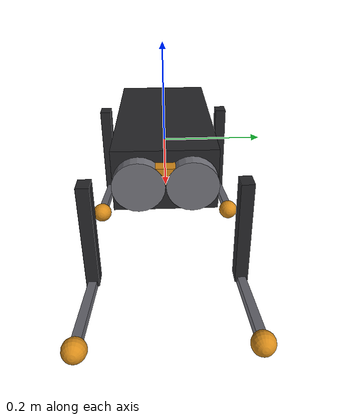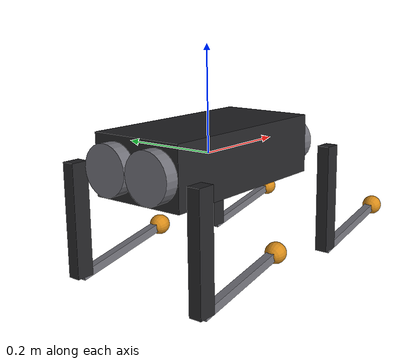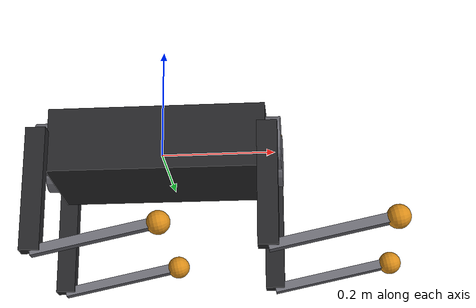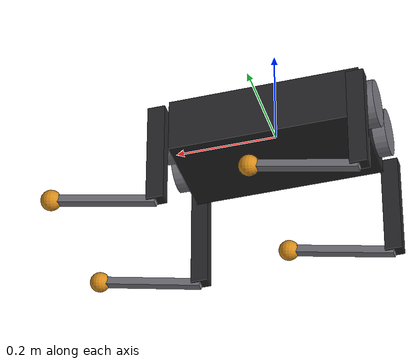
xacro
<?xml version="1.0"?>
<robot xmlns:xacro="http://www.ros.org/wiki/xacro" name="go2">

  <!-- ── dimensions (metres) ───────────────────────────────────────────── -->
  <xacro:property name="trunk_length" value="0.3762"/>
  <xacro:property name="trunk_width"  value="0.0935"/>
  <xacro:property name="trunk_height" value="0.114"/>
  <xacro:property name="trunk_mass"   value="6.921"/>

  <xacro:property name="hip_offset_x" value="0.1934"/>
  <xacro:property name="hip_offset_y" value="0.0465"/>
  <xacro:property name="thigh_offset" value="0.0955"/>
  <xacro:property name="thigh_length" value="0.213"/>
  <xacro:property name="calf_length"  value="0.213"/>

  <xacro:property name="hip_radius"   value="0.046"/>
  <xacro:property name="hip_length"   value="0.04"/>
  <xacro:property name="thigh_width"  value="0.0245"/>
  <xacro:property name="thigh_height" value="0.034"/>
  <xacro:property name="calf_width"   value="0.016"/>
  <xacro:property name="foot_radius"  value="0.02"/>

  <xacro:property name="hip_mass"   value="0.678"/>
  <xacro:property name="thigh_mass" value="1.152"/>
  <xacro:property name="calf_mass"  value="0.154"/>
  <xacro:property name="foot_mass"  value="0.06"/>

  <!-- ── joint limits (rad, rad/s, N·m) ────────────────────────────────── -->
  <xacro:property name="hip_min"   value="-1.0472"/>
  <xacro:property name="hip_max"   value="1.0472"/>
  <xacro:property name="hip_tau"   value="23.7"/>
  <xacro:property name="hip_vel"   value="30.1"/>
  <xacro:property name="thigh_min" value="-1.5708"/>
  <xacro:property name="thigh_max" value="3.4907"/>
  <xacro:property name="thigh_tau" value="23.7"/>
  <xacro:property name="thigh_vel" value="30.1"/>
  <xacro:property name="calf_min"  value="-2.7227"/>
  <xacro:property name="calf_max"  value="-0.83776"/>
  <xacro:property name="calf_tau"  value="35.55"/>
  <xacro:property name="calf_vel"  value="20.06"/>

  <!-- Set from the launch file; true only when fetch_meshes.sh has run. -->
  <xacro:arg name="use_meshes" default="false"/>
  <xacro:property name="use_meshes" value="$(arg use_meshes)"/>
  <xacro:property name="mesh_dir" value="package://agr_legged_description/meshes"/>

  <material name="go2_dark"><color rgba="0.15 0.15 0.16 1"/></material>
  <material name="go2_grey"><color rgba="0.45 0.45 0.48 1"/></material>
  <material name="go2_accent"><color rgba="0.85 0.55 0.10 1"/></material>

  <xacro:macro name="box_inertia" params="m x y z">
    <inertial>
      <mass value="${m}"/>
      <inertia ixx="${m*(y*y+z*z)/12}" ixy="0" ixz="0"
               iyy="${m*(x*x+z*z)/12}" iyz="0" izz="${m*(x*x+y*y)/12}"/>
    </inertial>
  </xacro:macro>

  <!-- ── trunk ─────────────────────────────────────────────────────────── -->
  <link name="base_link">
    <visual>
      <xacro:if value="${use_meshes}">
        <geometry><mesh filename="${mesh_dir}/base.dae"/></geometry>
      </xacro:if>
      <xacro:unless value="${use_meshes}">
        <geometry><box size="${trunk_length} ${trunk_width*2} ${trunk_height}"/></geometry>
        <material name="go2_dark"/>
      </xacro:unless>
    </visual>
    <collision>
      <geometry><box size="${trunk_length} ${trunk_width*2} ${trunk_height}"/></geometry>
    </collision>
    <xacro:box_inertia m="${trunk_mass}" x="${trunk_length}" y="${trunk_width*2}" z="${trunk_height}"/>
  </link>

  <!-- head marker, so "forward" is obvious in the GUI -->
  <link name="head">
    <visual>
      <geometry><box size="0.05 0.06 0.03"/></geometry>
      <material name="go2_accent"/>
    </visual>
    <inertial><mass value="0.01"/><inertia ixx="1e-5" ixy="0" ixz="0" iyy="1e-5" iyz="0" izz="1e-5"/></inertial>
  </link>
  <joint name="head_joint" type="fixed">
    <parent link="base_link"/><child link="head"/>
    <origin xyz="${trunk_length/2} 0 0.02"/>
  </joint>

  <!-- ── one leg: hip → thigh → calf → foot ────────────────────────────── -->
  <!-- mirror_x: +1 front, -1 rear.  mirror_y: +1 left, -1 right. -->
  <xacro:macro name="leg" params="name mirror_x mirror_y">
    <link name="${name}_hip">
      <visual>
        <xacro:if value="${use_meshes}">
          <geometry><mesh filename="${mesh_dir}/hip.dae"/></geometry>
        </xacro:if>
        <xacro:unless value="${use_meshes}">
          <origin rpy="0 ${pi/2} 0"/>
          <geometry><cylinder radius="${hip_radius}" length="${hip_length}"/></geometry>
          <material name="go2_grey"/>
        </xacro:unless>
      </visual>
      <collision>
        <origin rpy="0 ${pi/2} 0"/>
        <geometry><cylinder radius="${hip_radius}" length="${hip_length}"/></geometry>
      </collision>
      <xacro:box_inertia m="${hip_mass}" x="${hip_length}" y="${hip_radius*2}" z="${hip_radius*2}"/>
    </link>
    <joint name="${name}_hip_joint" type="revolute">
      <parent link="base_link"/><child link="${name}_hip"/>
      <origin xyz="${mirror_x*hip_offset_x} ${mirror_y*hip_offset_y} 0"/>
      <axis xyz="1 0 0"/>
      <limit lower="${hip_min}" upper="${hip_max}" effort="${hip_tau}" velocity="${hip_vel}"/>
      <dynamics damping="0.01" friction="0.2"/>
    </joint>

    <link name="${name}_thigh">
      <visual>
        <xacro:if value="${use_meshes}">
          <!-- upstream ships a mirrored thigh for the right-hand legs -->
          <geometry><mesh filename="${mesh_dir}/thigh${'' if mirror_y == 1 else '_mirror'}.dae"/></geometry>
        </xacro:if>
        <xacro:unless value="${use_meshes}">
          <origin xyz="0 0 ${-thigh_length/2}"/>
          <geometry><box size="${thigh_height} ${thigh_width} ${thigh_length}"/></geometry>
          <material name="go2_dark"/>
        </xacro:unless>
      </visual>
      <collision>
        <origin xyz="0 0 ${-thigh_length/2}"/>
        <geometry><box size="${thigh_height} ${thigh_width} ${thigh_length}"/></geometry>
      </collision>
      <xacro:box_inertia m="${thigh_mass}" x="${thigh_height}" y="${thigh_width}" z="${thigh_length}"/>
    </link>
    <joint name="${name}_thigh_joint" type="revolute">
      <parent link="${name}_hip"/><child link="${name}_thigh"/>
      <origin xyz="0 ${mirror_y*thigh_offset} 0"/>
      <axis xyz="0 1 0"/>
      <limit lower="${thigh_min}" upper="${thigh_max}" effort="${thigh_tau}" velocity="${thigh_vel}"/>
      <dynamics damping="0.01" friction="0.2"/>
    </joint>

    <link name="${name}_calf">
      <visual>
        <xacro:if value="${use_meshes}">
          <geometry><mesh filename="${mesh_dir}/calf${'' if mirror_y == 1 else '_mirror'}.dae"/></geometry>
        </xacro:if>
        <xacro:unless value="${use_meshes}">
          <origin xyz="0 0 ${-calf_length/2}"/>
          <geometry><box size="${calf_width} ${calf_width} ${calf_length}"/></geometry>
          <material name="go2_grey"/>
        </xacro:unless>
      </visual>
      <collision>
        <origin xyz="0 0 ${-calf_length/2}"/>
        <geometry><box size="${calf_width} ${calf_width} ${calf_length}"/></geometry>
      </collision>
      <xacro:box_inertia m="${calf_mass}" x="${calf_width}" y="${calf_width}" z="${calf_length}"/>
    </link>
    <joint name="${name}_calf_joint" type="revolute">
      <parent link="${name}_thigh"/><child link="${name}_calf"/>
      <origin xyz="0 0 ${-thigh_length}"/>
      <axis xyz="0 1 0"/>
      <limit lower="${calf_min}" upper="${calf_max}" effort="${calf_tau}" velocity="${calf_vel}"/>
      <dynamics damping="0.01" friction="0.2"/>
    </joint>

    <link name="${name}_foot">
      <visual>
        <xacro:if value="${use_meshes}">
          <geometry><mesh filename="${mesh_dir}/foot.dae"/></geometry>
        </xacro:if>
        <xacro:unless value="${use_meshes}">
          <geometry><sphere radius="${foot_radius}"/></geometry><material name="go2_accent"/>
        </xacro:unless>
      </visual>
      <collision><geometry><sphere radius="${foot_radius}"/></geometry></collision>
      <inertial>
        <mass value="${foot_mass}"/>
        <inertia ixx="1e-5" ixy="0" ixz="0" iyy="1e-5" iyz="0" izz="1e-5"/>
      </inertial>
    </link>
    <joint name="${name}_foot_joint" type="fixed">
      <parent link="${name}_calf"/><child link="${name}_foot"/>
      <origin xyz="0 0 ${-calf_length}"/>
    </joint>
  </xacro:macro>

  <!-- Unitree's own naming: FL front-left, FR front-right, RL/RR rear. -->
  <xacro:leg name="FL" mirror_x="1"  mirror_y="1"/>
  <xacro:leg name="FR" mirror_x="1"  mirror_y="-1"/>
  <xacro:leg name="RL" mirror_x="-1" mirror_y="1"/>
  <xacro:leg name="RR" mirror_x="-1" mirror_y="-1"/>

  <xacro:include filename="$(find agr_legged_description)/urdf/go2_gazebo.xacro"/>
</robot>

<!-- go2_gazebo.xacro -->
<!-- Gazebo + ros2_control wiring for the Go2. -->
<robot xmlns:xacro="http://www.ros.org/wiki/xacro">

  <!-- Feet need real friction or the robot skates. Everything else is
       ordinary. mu 0.8 is the value the official description uses. -->
  <xacro:macro name="foot_surface" params="name">
    <gazebo reference="${name}_foot">
      <mu1>0.8</mu1><mu2>0.8</mu2>
      <kp>1000000.0</kp><kd>100.0</kd>
      <self_collide>false</self_collide>
    </gazebo>
  </xacro:macro>
  <xacro:foot_surface name="FL"/>
  <xacro:foot_surface name="FR"/>
  <xacro:foot_surface name="RL"/>
  <xacro:foot_surface name="RR"/>

  <gazebo reference="base_link"><self_collide>false</self_collide></gazebo>

  <ros2_control name="GazeboSystem" type="system">
    <hardware>
      <plugin>gz_ros2_control/GazeboSimSystem</plugin>
    </hardware>
    <xacro:macro name="leg_ctrl" params="name">
      <joint name="${name}_hip_joint">
        <command_interface name="position"/>
        <state_interface name="position"/>
        <state_interface name="velocity"/>
        <state_interface name="effort"/>
      </joint>
      <joint name="${name}_thigh_joint">
        <command_interface name="position"/>
        <state_interface name="position"/>
        <state_interface name="velocity"/>
        <state_interface name="effort"/>
      </joint>
      <joint name="${name}_calf_joint">
        <command_interface name="position"/>
        <state_interface name="position"/>
        <state_interface name="velocity"/>
        <state_interface name="effort"/>
      </joint>
    </xacro:macro>
    <xacro:leg_ctrl name="FL"/>
    <xacro:leg_ctrl name="FR"/>
    <xacro:leg_ctrl name="RL"/>
    <xacro:leg_ctrl name="RR"/>
  </ros2_control>

  <gazebo>
    <plugin filename="gz_ros2_control-system" name="gz_ros2_control::GazeboSimROS2ControlPlugin">
      <parameters>$(find agr_legged_bringup)/config/go2_controllers.yaml</parameters>
    </plugin>
    <plugin filename="gz-sim-imu-system" name="gz::sim::systems::Imu"/>
  </gazebo>

  <!-- IMU on the trunk — a legged robot without one has no idea which way is up. -->
  <link name="imu_link">
    <inertial><mass value="0.01"/><inertia ixx="1e-6" ixy="0" ixz="0" iyy="1e-6" iyz="0" izz="1e-6"/></inertial>
  </link>
  <joint name="imu_joint" type="fixed">
    <parent link="base_link"/><child link="imu_link"/><origin xyz="0 0 0"/>
  </joint>
  <gazebo reference="imu_link">
    <sensor name="imu_sensor" type="imu">
      <always_on>1</always_on><update_rate>200</update_rate>
      <topic>imu</topic>
    </sensor>
  </gazebo>
</robot>
